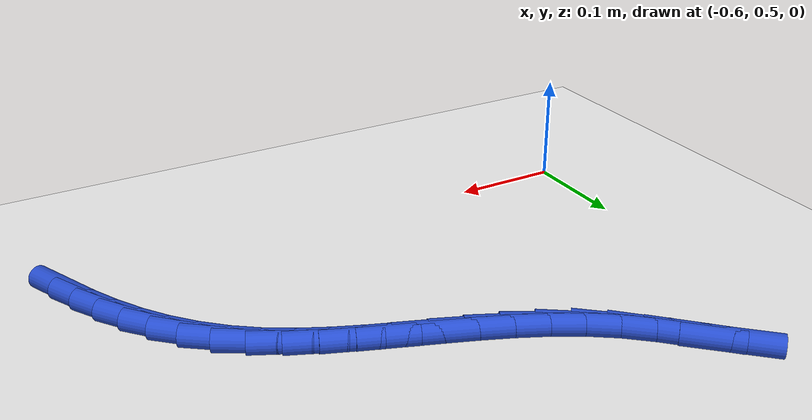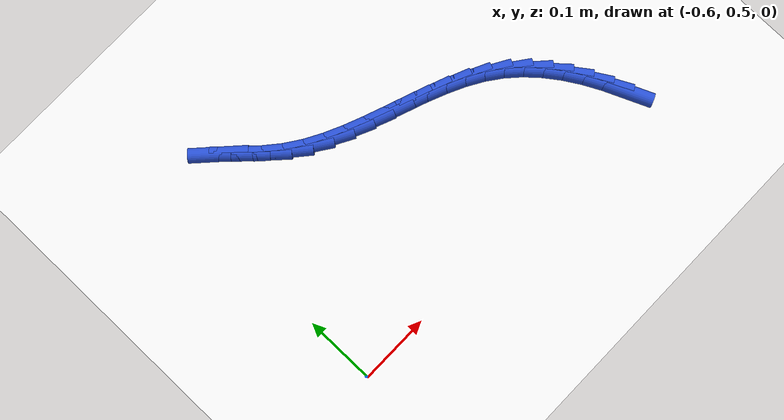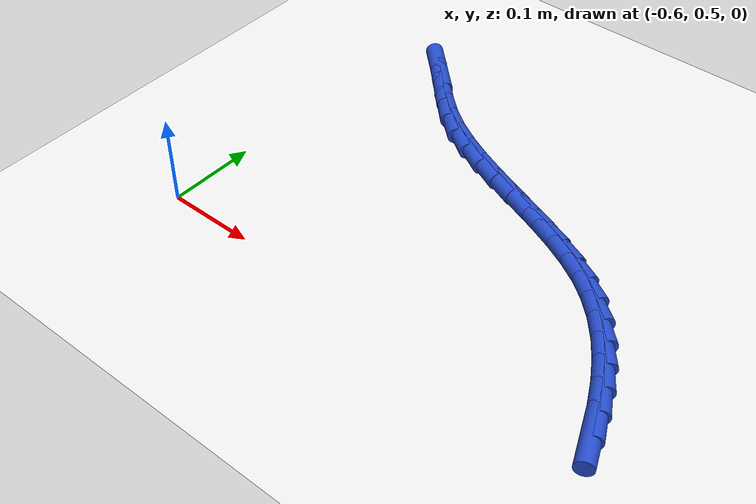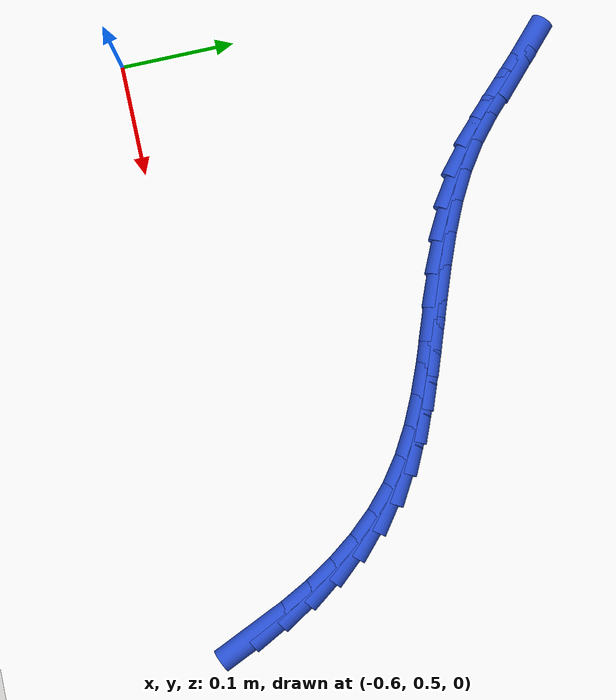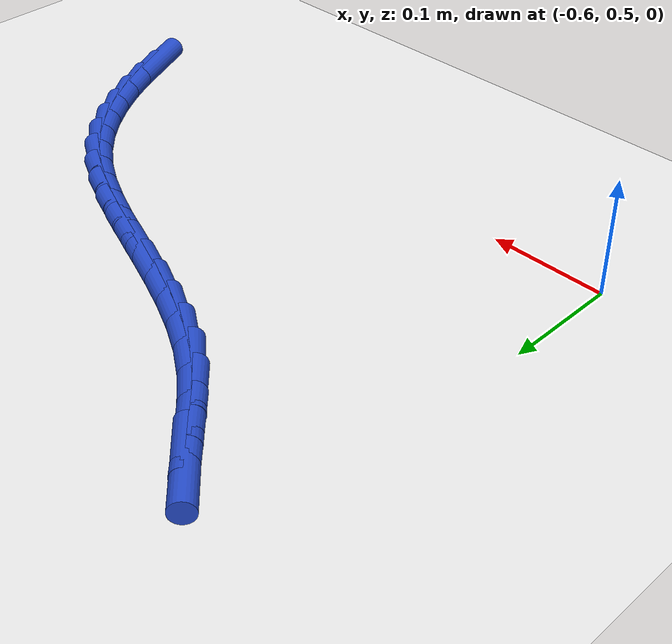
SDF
<sdf version="1.6">
 <world name="default">
  <model name="ground_plane">
   <static>1</static>
   <link name="link">
    <collision name="collision">
     <geometry><plane><normal>0 0 1</normal><size>100 100</size></plane></geometry>
     <surface><friction><ode><mu>100</mu><mu2>50</mu2></ode></friction></surface>
    </collision>
    <visual name="visual">
     <cast_shadows>0</cast_shadows>
     <geometry><plane><normal>0 0 1</normal><size>100 100</size></plane></geometry>
     <material>
      <script><uri>file://media/materials/scripts/gazebo.material</uri><name>Gazebo/WhiteGlow</name></script>
     </material>
    </visual>
   </link>
  </model>
  <model name="line">
   <link name="link_18">
    <pose>-0.09566881150301015 0.5156802878964868 0.01 0 1.57 -1.1606732972444624</pose>
    <collision name="collision">
     <geometry><cylinder><radius>0.01</radius><length>0.08</length></cylinder></geometry>
    </collision>
    <visual name="visual">
     <material>
      <script><name>Gazebo/Blue</name><uri>file://media/materials/scripts/gazebo.material</uri></script>
     </material>
     <geometry><cylinder><radius>0.01</radius><length>0.08</length></cylinder></geometry>
    </visual>
   </link>
   <link name="link_19">
    <pose>-0.10703372389358383 0.5418198945703463 0.01 0 1.57 -1.0980911213470426</pose>
    <collision name="collision">
     <geometry><cylinder><radius>0.01</radius><length>0.08</length></cylinder></geometry>
    </collision>
    <visual name="visual">
     <material>
      <script><name>Gazebo/Blue</name><uri>file://media/materials/scripts/gazebo.material</uri></script>
     </material>
     <geometry><cylinder><radius>0.01</radius><length>0.08</length></cylinder></geometry>
    </visual>
   </link>
   <link name="link_20">
    <pose>-0.11974244814249721 0.5666720161366664 0.01 0 1.57 -1.025557207951859</pose>
    <collision name="collision">
     <geometry><cylinder><radius>0.01</radius><length>0.08</length></cylinder></geometry>
    </collision>
    <visual name="visual">
     <material>
      <script><name>Gazebo/Blue</name><uri>file://media/materials/scripts/gazebo.material</uri></script>
     </material>
     <geometry><cylinder><radius>0.01</radius><length>0.08</length></cylinder></geometry>
    </visual>
   </link>
   <link name="link_21">
    <pose>-0.13392735159460864 0.5900573071110382 0.01 0 1.57 -0.9425061426219088</pose>
    <collision name="collision">
     <geometry><cylinder><radius>0.01</radius><length>0.08</length></cylinder></geometry>
    </collision>
    <visual name="visual">
     <material>
      <script><name>Gazebo/Blue</name><uri>file://media/materials/scripts/gazebo.material</uri></script>
     </material>
     <geometry><cylinder><radius>0.01</radius><length>0.08</length></cylinder></geometry>
    </visual>
   </link>
   <link name="link_22">
    <pose>-0.1497208015947764 0.6117964220090522 0.01 0 1.57 -0.8488471740687971</pose>
    <collision name="collision">
     <geometry><cylinder><radius>0.01</radius><length>0.08</length></cylinder></geometry>
    </collision>
    <visual name="visual">
     <material>
      <script><name>Gazebo/Blue</name><uri>file://media/materials/scripts/gazebo.material</uri></script>
     </material>
     <geometry><cylinder><radius>0.01</radius><length>0.08</length></cylinder></geometry>
    </visual>
   </link>
   <link name="link_23">
    <pose>-0.1672551654878589 0.6317100153462996 0.01 0 1.57 -0.7452518840543317</pose>
    <collision name="collision">
     <geometry><cylinder><radius>0.01</radius><length>0.08</length></cylinder></geometry>
    </collision>
    <visual name="visual">
     <material>
      <script><name>Gazebo/Blue</name><uri>file://media/materials/scripts/gazebo.material</uri></script>
     </material>
     <geometry><cylinder><radius>0.01</radius><length>0.08</length></cylinder></geometry>
    </visual>
   </link>
   <link name="link_24">
    <pose>-0.18666281061871456 0.6496187416383714 0.01 0 1.57 -0.6336413549368419</pose>
    <collision name="collision">
     <geometry><cylinder><radius>0.01</radius><length>0.08</length></cylinder></geometry>
    </collision>
    <visual name="visual">
     <material>
      <script><name>Gazebo/Blue</name><uri>file://media/materials/scripts/gazebo.material</uri></script>
     </material>
     <geometry><cylinder><radius>0.01</radius><length>0.08</length></cylinder></geometry>
    </visual>
   </link>
   <link name="link_25">
    <pose>-0.208072088017075 0.6653482818258402 0.01 0 1.57 -0.528621963700762</pose>
    <collision name="collision">
     <geometry><cylinder><radius>0.01</radius><length>0.08</length></cylinder></geometry>
    </collision>
    <visual name="visual">
     <material>
      <script><name>Gazebo/Blue</name><uri>file://media/materials/scripts/gazebo.material</uri></script>
     </material>
     <geometry><cylinder><radius>0.01</radius><length>0.08</length></cylinder></geometry>
    </visual>
   </link>
   <link name="link_26">
    <pose>-0.23140842551213203 0.678978275568258 0.01 0 1.57 -0.44847335868013116</pose>
    <collision name="collision">
     <geometry><cylinder><radius>0.01</radius><length>0.08</length></cylinder></geometry>
    </collision>
    <visual name="visual">
     <material>
      <script><name>Gazebo/Blue</name><uri>file://media/materials/scripts/gazebo.material</uri></script>
     </material>
     <geometry><cylinder><radius>0.01</radius><length>0.08</length></cylinder></geometry>
    </visual>
   </link>
   <link name="link_27">
    <pose>-0.2563028447152091 0.6909568123906937 0.01 0 1.57 -0.39301074625491556</pose>
    <collision name="collision">
     <geometry><cylinder><radius>0.01</radius><length>0.08</length></cylinder></geometry>
    </collision>
    <visual name="visual">
     <material>
      <script><name>Gazebo/Blue</name><uri>file://media/materials/scripts/gazebo.material</uri></script>
     </material>
     <geometry><cylinder><radius>0.01</radius><length>0.08</length></cylinder></geometry>
    </visual>
   </link>
   <link name="link_28">
    <pose>-0.28236325630949227 0.7017609051827642 0.01 0 1.57 -0.3602006981382695</pose>
    <collision name="collision">
     <geometry><cylinder><radius>0.01</radius><length>0.08</length></cylinder></geometry>
    </collision>
    <visual name="visual">
     <material>
      <script><name>Gazebo/Blue</name><uri>file://media/materials/scripts/gazebo.material</uri></script>
     </material>
     <geometry><cylinder><radius>0.01</radius><length>0.08</length></cylinder></geometry>
    </visual>
   </link>
   <link name="link_29">
    <pose>-0.3091975709781671 0.7118675668340855 0.01 0 1.57 -0.3484292253387665</pose>
    <collision name="collision">
     <geometry><cylinder><radius>0.01</radius><length>0.08</length></cylinder></geometry>
    </collision>
    <visual name="visual">
     <material>
      <script><name>Gazebo/Blue</name><uri>file://media/materials/scripts/gazebo.material</uri></script>
     </material>
     <geometry><cylinder><radius>0.01</radius><length>0.08</length></cylinder></geometry>
    </visual>
   </link>
   <link name="link_30">
    <pose>-0.3364136994044193 0.721753810234274 0.01 0 1.57 -0.356856519039891</pose>
    <collision name="collision">
     <geometry><cylinder><radius>0.01</radius><length>0.08</length></cylinder></geometry>
    </collision>
    <visual name="visual">
     <material>
      <script><name>Gazebo/Blue</name><uri>file://media/materials/scripts/gazebo.material</uri></script>
     </material>
     <geometry><cylinder><radius>0.01</radius><length>0.08</length></cylinder></geometry>
    </visual>
   </link>
   <link name="link_31">
    <pose>-0.36361955227143483 0.7318966482729459 0.01 0 1.57 -0.3854832263349334</pose>
    <collision name="collision">
     <geometry><cylinder><radius>0.01</radius><length>0.08</length></cylinder></geometry>
    </collision>
    <visual name="visual">
     <material>
      <script><name>Gazebo/Blue</name><uri>file://media/materials/scripts/gazebo.material</uri></script>
     </material>
     <geometry><cylinder><radius>0.01</radius><length>0.08</length></cylinder></geometry>
    </visual>
   </link>
   <link name="link_32">
    <pose>-0.3904230402623995 0.7427730938397181 0.01 0 1.57 -0.43503210093595457</pose>
    <collision name="collision">
     <geometry><cylinder><radius>0.01</radius><length>0.08</length></cylinder></geometry>
    </collision>
    <visual name="visual">
     <material>
      <script><name>Gazebo/Blue</name><uri>file://media/materials/scripts/gazebo.material</uri></script>
     </material>
     <geometry><cylinder><radius>0.01</radius><length>0.08</length></cylinder></geometry>
    </visual>
   </link>
   <link name="link_33">
    <pose>-0.4164320740604989 0.7548601598242063 0.01 0 1.57 -0.5066189650234599</pose>
    <collision name="collision">
     <geometry><cylinder><radius>0.01</radius><length>0.08</length></cylinder></geometry>
    </collision>
    <visual name="visual">
     <material>
      <script><name>Gazebo/Blue</name><uri>file://media/materials/scripts/gazebo.material</uri></script>
     </material>
     <geometry><cylinder><radius>0.01</radius><length>0.08</length></cylinder></geometry>
    </visual>
   </link>
   <link name="link_34">
    <pose>-0.44125456434891897 0.7686348591160275 0.01 0 1.57 -0.6010942065488076</pose>
    <collision name="collision">
     <geometry><cylinder><radius>0.01</radius><length>0.08</length></cylinder></geometry>
    </collision>
    <visual name="visual">
     <material>
      <script><name>Gazebo/Blue</name><uri>file://media/materials/scripts/gazebo.material</uri></script>
     </material>
     <geometry><cylinder><radius>0.01</radius><length>0.08</length></cylinder></geometry>
    </visual>
   </link>
   <link name="link_35">
    <pose>-0.4644984225176415 0.7845742036395803 0.01 0 1.57 -0.7054480535789737</pose>
    <collision name="collision">
     <geometry><cylinder><radius>0.01</radius><length>0.08</length></cylinder></geometry>
    </collision>
    <visual name="visual">
     <material>
      <script><name>Gazebo/Blue</name><uri>file://media/materials/scripts/gazebo.material</uri></script>
     </material>
     <geometry><cylinder><radius>0.01</radius><length>0.08</length></cylinder></geometry>
    </visual>
   </link>
   <link name="link_36">
    <pose>-0.48598075872657326 0.8028695188528441 0.01 0 1.57 -0.7707703318666336</pose>
    <collision name="collision">
     <geometry><cylinder><radius>0.01</radius><length>0.08</length></cylinder></geometry>
    </collision>
    <visual name="visual">
     <material>
      <script><name>Gazebo/Blue</name><uri>file://media/materials/scripts/gazebo.material</uri></script>
     </material>
     <geometry><cylinder><radius>0.01</radius><length>0.08</length></cylinder></geometry>
    </visual>
   </link>
   <link name="link_37">
    <pose>-0.5063181062227639 0.8226204203675831 0.01 0 1.57 -0.7865356667090635</pose>
    <collision name="collision">
     <geometry><cylinder><radius>0.01</radius><length>0.08</length></cylinder></geometry>
    </collision>
    <visual name="visual">
     <material>
      <script><name>Gazebo/Blue</name><uri>file://media/materials/scripts/gazebo.material</uri></script>
     </material>
     <geometry><cylinder><radius>0.01</radius><length>0.08</length></cylinder></geometry>
    </visual>
   </link>
   <link name="link_38">
    <pose>-0.5263179247079188 0.8426657904069456 0.01 0 1.57 -0.7528477926509322</pose>
    <collision name="collision">
     <geometry><cylinder><radius>0.01</radius><length>0.08</length></cylinder></geometry>
    </collision>
    <visual name="visual">
     <material>
      <script><name>Gazebo/Blue</name><uri>file://media/materials/scripts/gazebo.material</uri></script>
     </material>
     <geometry><cylinder><radius>0.01</radius><length>0.08</length></cylinder></geometry>
    </visual>
   </link>
  </model>
 </world>
</sdf>
